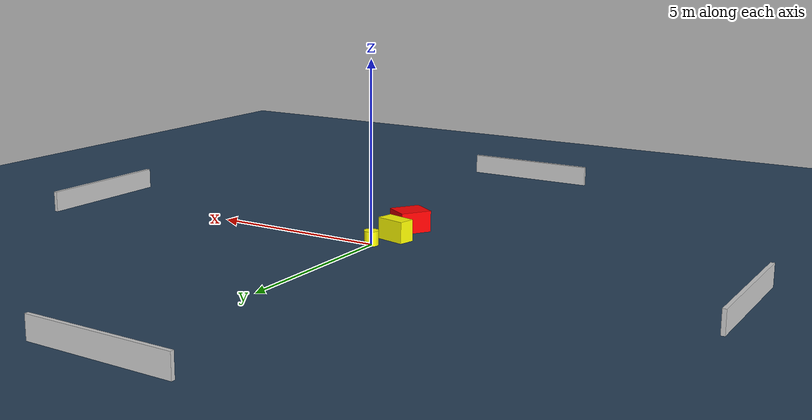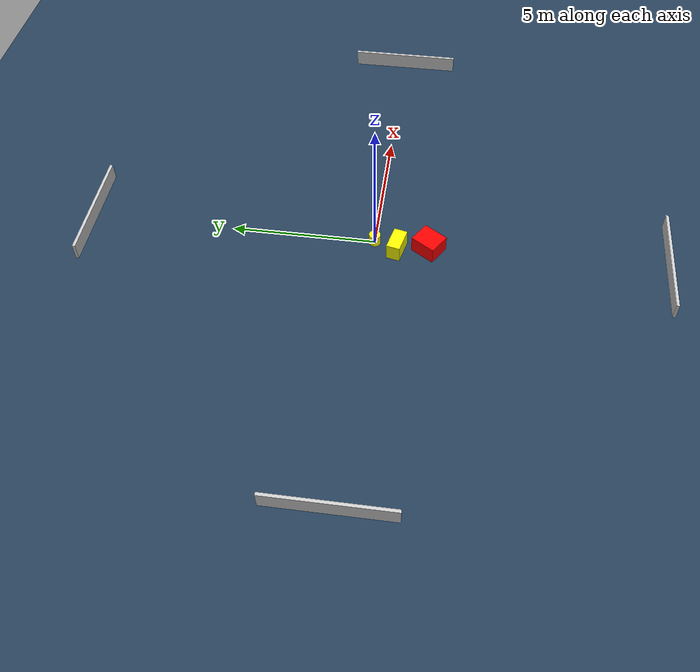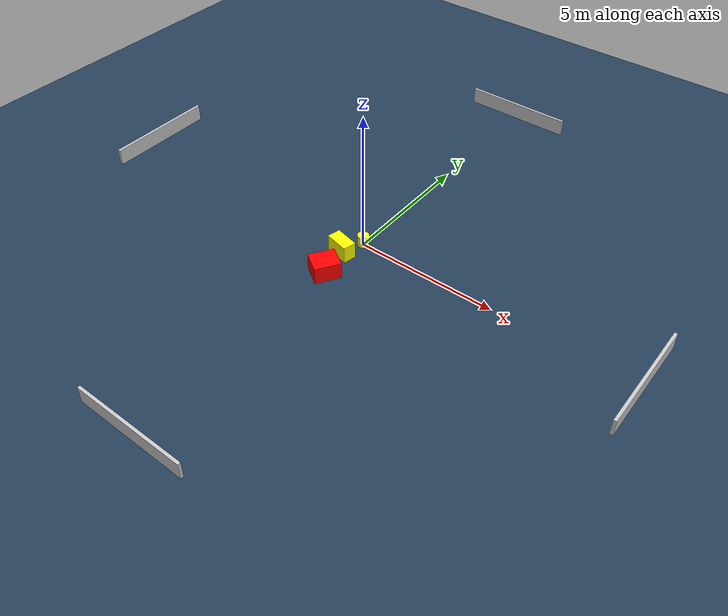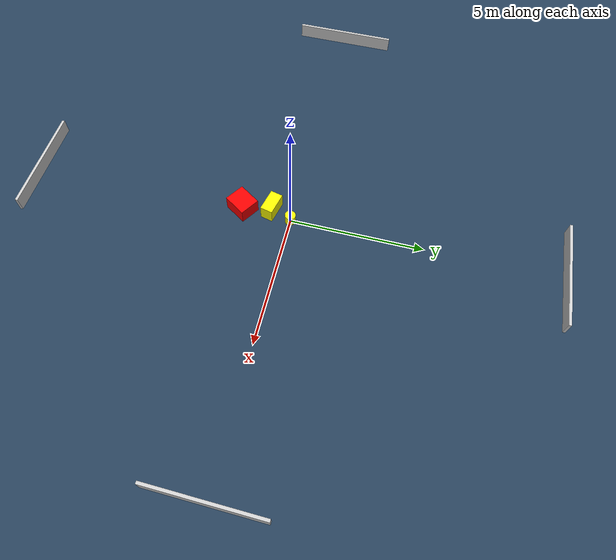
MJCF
<?xml version="1.0" ?>
<mujoco model="generated_environment">
  <option timestep="0.01" integrator="RK4" cone="elliptic"/>
  <default>
    <geom density="1"/>
  </default>
  <asset>
    <texture builtin="gradient" height="3072" name="skybox" rgb1="0.3 0.5 0.7" rgb2="0 0 0" type="skybox" width="512"/>
    <texture builtin="checker" height="300" name="groundplane" rgb1="0.2 0.3 0.4" rgb2="0.1 0.2 0.3" type="2d" width="300"/>
    <material name="groundplane" reflectance="0.2" texrepeat="5 5" texture="groundplane"/>
  </asset>
  <worldbody>
    <light dir="0 0 -1" directional="true" pos="0 0 1.5"/>
    <geom condim="3" friction="0.5 0.005 0.001" material="groundplane" name="floor" pos="0 0 0" size="0 0 0.05" type="plane"/>
    <body name="walls">
      <geom name="wall_1" condim="4" pos="-10.0 0.0 0.3" rgba="0.800000011920929 0.800000011920929 0.800000011920929 1.0" size="0.05 2.0 0.3" type="box"/>
      <geom name="wall_2" condim="4" pos="10.0 0.0 0.3" rgba="0.800000011920929 0.800000011920929 0.800000011920929 1.0" size="0.05 2.0 0.3" type="box"/>
      <geom name="wall_3" condim="4" pos="0.0 -10.0 0.3" rgba="0.800000011920929 0.800000011920929 0.800000011920929 1.0" size="2.0 0.05 0.3" type="box"/>
      <geom name="wall_4" condim="4" pos="0.0 10.0 0.3" rgba="0.800000011920929 0.800000011920929 0.800000011920929 1.0" size="2.0 0.05 0.3" type="box"/>
    </body>
    <body name="robot">
      <joint name="joint_x" type="slide" pos="0 0 0" axis="1 0 0"/>
      <joint name="joint_y" type="slide" pos="0 0 0" axis="0 1 0"/>
      <geom name="robot" type="cylinder" pos="0.0 0.0 0.2" size="0.2 0.2 0.0" mass="5.0" friction="1.0 0.005 0.0001" condim="4" rgba="1.0 1.0 0.0 1.0"/>
    </body>
    <body name="obstacle_1_movable">
      <geom name="obstacle_1_movable" condim="4" pos="-0.28033253123561674 -0.7911469167995706 0.3" euler="0 0 347.16737968478344" friction="0.0 0.005 0.001" rgba="1.0 1.0 0.0 1.0" size="0.426247954708333 0.23305432329182763 0.3" type="box" mass="0.1"/>
      <joint type="free"/>
    </body>
    <body name="obstacle_2_static">
      <geom name="obstacle_2_static" condim="4" pos="-0.10044159246119348 -1.8764633041145216 0.3" euler="0 0 57.11580129406577" friction="0.0 0.005 0.001" rgba="1.0 0.0 0.0 1.0" size="0.45057343146025264 0.38733577578778333 0.3" type="box"/>
    </body>
  </worldbody>
  <actuator>
    <motor name="actuator_x" joint="joint_x" gear="1" ctrlrange="-1 1"/>
    <motor name="actuator_y" joint="joint_y" gear="1" ctrlrange="-1 1"/>
  </actuator>
</mujoco>
